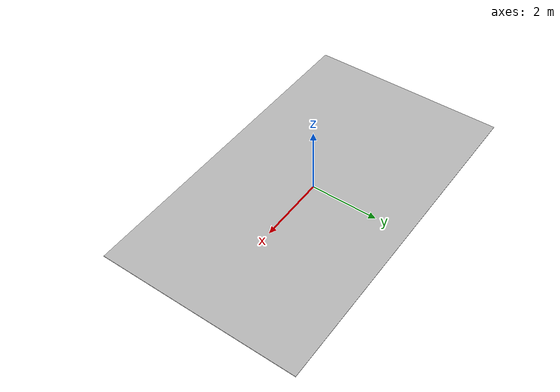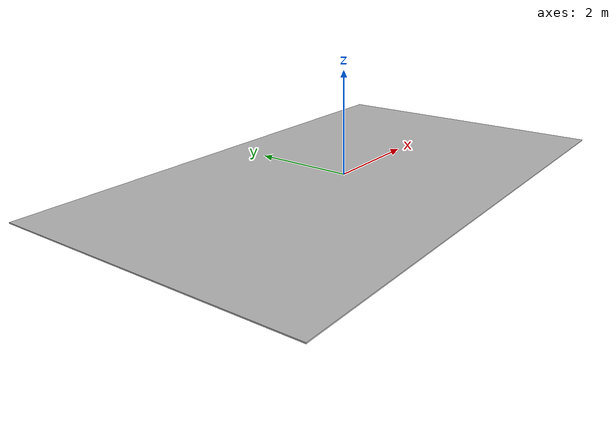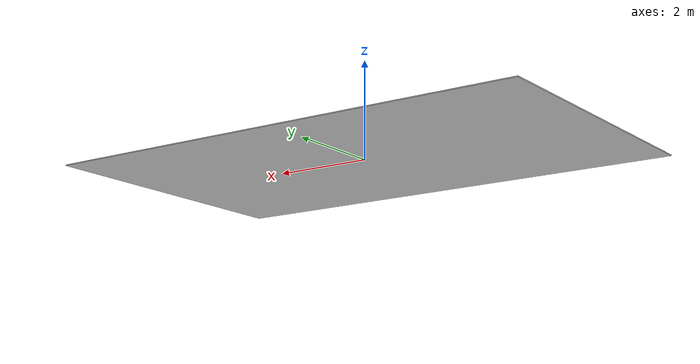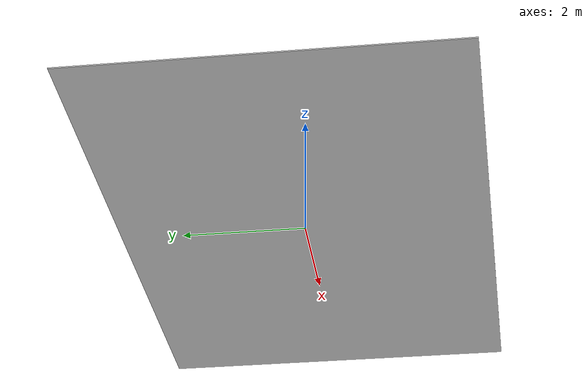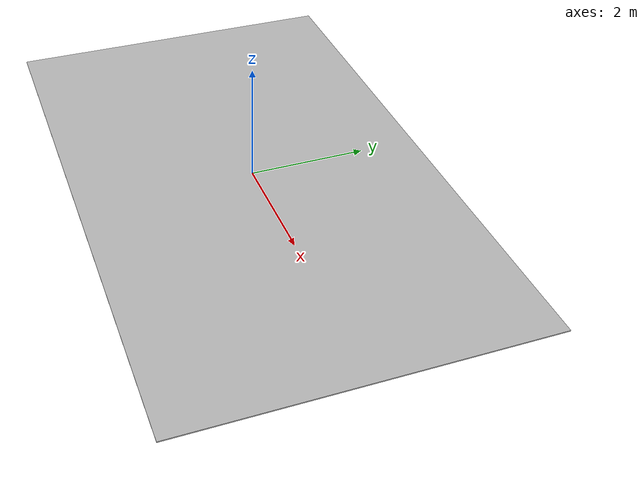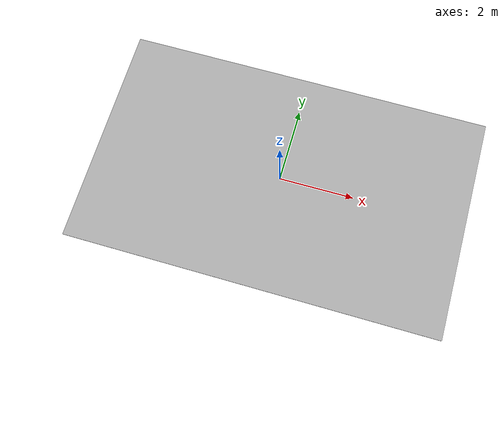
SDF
<?xml version="1.0"?>
<sdf version="1.6">
  <model name="crc_track">
    <static>true</static>
    <link name="link">
      <collision name="collision">
        <pose>0 0 -0.01 0 0 0</pose>
        <geometry><box><size>10.0 6.0 0.02</size></box></geometry>
        <surface>
          <friction><ode><mu>1.0</mu><mu2>1.0</mu2></ode></friction>
        </surface>
      </collision>
      <visual name="visual">
        <pose>0 0 -0.01 0 0 0</pose>
        <cast_shadows>false</cast_shadows>
        <geometry><box><size>10.0 6.0 0.02</size></box></geometry>
        <material>
          <script>
            <uri>model://crc_track/materials/scripts</uri>
            <uri>model://crc_track/materials/textures</uri>
            <name>CRC/Track</name>
          </script>
        </material>
      </visual>
    </link>
  </model>
</sdf>
